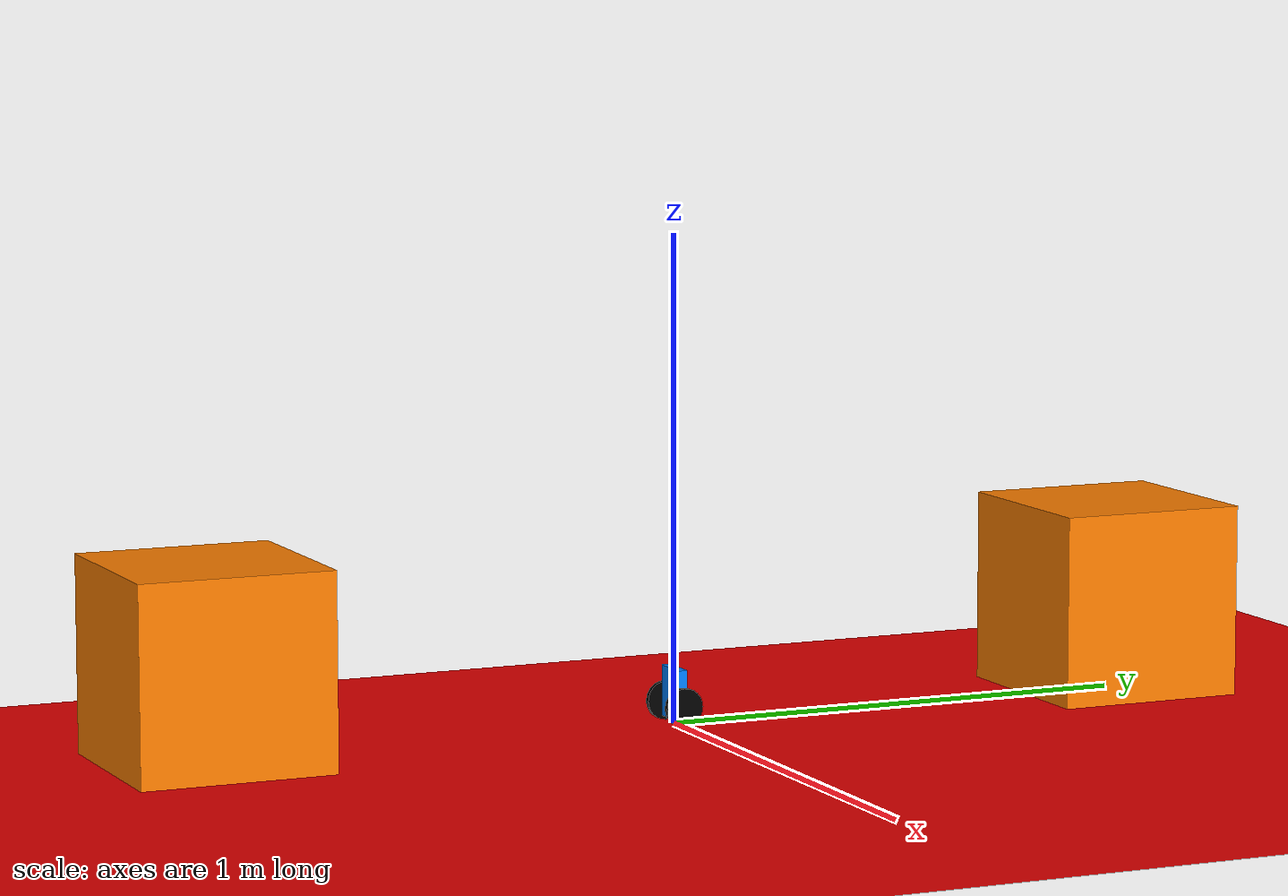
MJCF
<mujoco>
    <option timestep="0.001" integrator="RK4">
        <flag energy="enable" contact="enable"/>
    </option>
    <default>
        <geom friction="1 0.005 0.0001"/>
    </default>
    <worldbody>
        <light diffuse=".5 .5 .5" pos="0 1 3" dir="0 -0.1 -1"/>
        <geom type="plane" size="2 2 0.1" rgba=".9 0 0 1" condim="3"/>
        <!-- Root body for planar movement -->
        <body name="cart" pos="0 0 0.04">
            <joint name="cart_x" type="slide" axis="1 0 0" pos="0 0 0"/>
            <joint name="cart_y" type="slide" axis="0 1 0" pos="0 0 0"/>
            <joint name="cart_yaw" type="hinge" axis="0 0 1" pos="0 0 0"/>
            <joint name="cart_pitch" type="hinge" axis="1 0 0" pos="0 0 0"/>
            <!-- Pendulum block (main body) -->
            <!-- so that bottom is 0.03m from center of wheels axis -->
            <body name="pendulum" pos="0 0 0.0225">
                <geom type="box" size="0.041 0.010 0.0525" rgba="0 0.5 1 1" mass="0.5"/>
                <!-- Left wheel attached to pendulum -->
                <body name="left_wheel" pos="-0.047 0 -0.0225" euler="0 90 0">
                    <joint name="left_wheel_hinge" type="hinge" axis="0 0 -1" pos="0 0 0"/>
                    <geom type="cylinder" size="0.04 0.005" rgba="0 0 0 1" mass="0.01" friction="1 0.005 0.0001" condim="3"/>
                </body>
                <!-- Right wheel attached to pendulum -->
                <body name="right_wheel" pos="0.047 0 -0.0225" euler="0 90 0">
                    <joint name="right_wheel_hinge" type="hinge" axis="0 0 1" pos="0 0 0"/>
                    <geom type="cylinder" size="0.04 0.005" rgba="0 0 0 1" mass="0.01" friction="1 0.005 0.0001" condim="3"/>
                </body>
            </body>
        </body>
        <body name="blockYpos" pos="0 1 0">
            <geom type="box" size="0.2 0.2 0.2" pos="0 0 0.2" rgba="1 0.5 0 1" mass="5"/>
        </body>
        <body name="blockYneg" pos="0 -1 0">
            <geom type="box" size="0.2 0.2 0.2" pos="0 0 0.2" rgba="1 0.5 0 1" mass="5"/>
        </body>
    </worldbody>
    <actuator>
        <motor joint="left_wheel_hinge" name="left_motor" gear="1" ctrllimited="true" ctrlrange="-10 10"/>
        <motor joint="right_wheel_hinge" name="right_motor" gear="1" ctrllimited="true" ctrlrange="-10 10"/>
    </actuator>
    <sensor>
        <jointpos name="cart_pitch_pos" joint="cart_pitch"/>
        <jointvel name="cart_pitch_vel" joint="cart_pitch"/>
        <jointpos name="left_wheel_pos" joint="left_wheel_hinge"/>
        <jointvel name="left_wheel_vel" joint="left_wheel_hinge"/>
        <jointpos name="right_wheel_pos" joint="right_wheel_hinge"/>
        <jointvel name="right_wheel_vel" joint="right_wheel_hinge"/>
    </sensor>
</mujoco>
